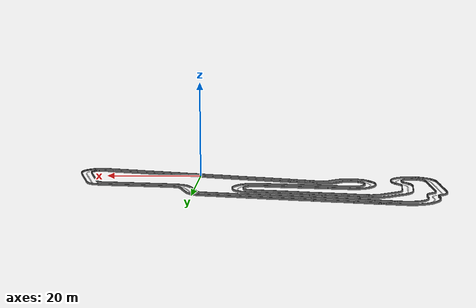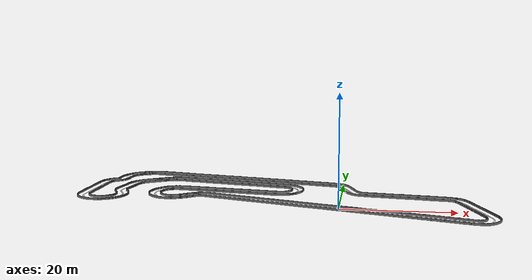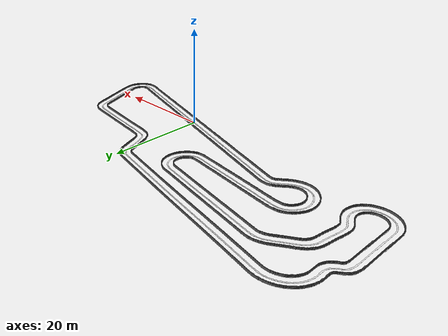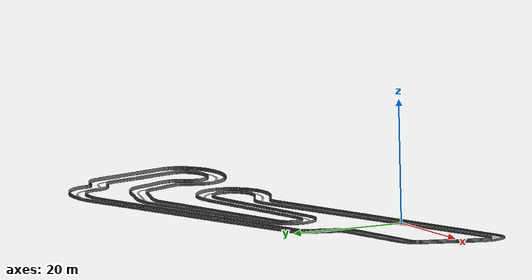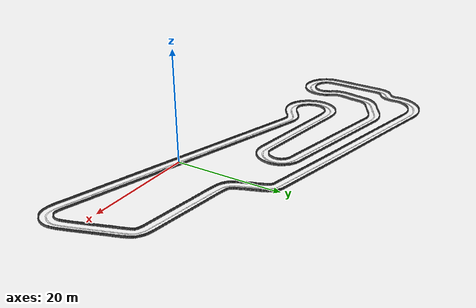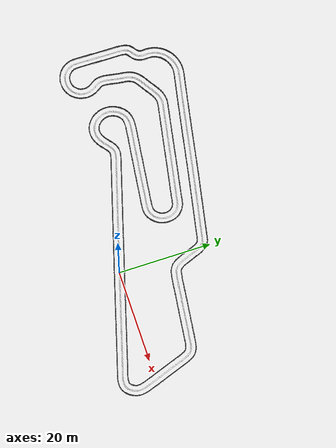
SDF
<?xml version="1.0" ?>
<sdf version="1.10">
    <model name="oschersleben_pro">
        <static>true</static>
        <link name="link">
            <!-- Track Walls visual -->
            <visual name="walls_visual">
                <geometry>
                    <mesh>
                        <uri>model://oschersleben_pro/meshes/track.obj</uri>
                        <scale>1 1 1</scale>
                    </mesh>
                </geometry>
                <material>
                    <ambient>0.2 0.2 0.2 1</ambient>
                    <diffuse>0.3 0.3 0.3 1</diffuse>
                </material>
            </visual>

            <!-- Baked Centerline visual -->
            <visual name="centerline_visual">
                <geometry>
                    <mesh>
                        <uri>model://oschersleben_pro/meshes/centerline.obj</uri>
                        <scale>1 1 1</scale>
                    </mesh>
                </geometry>
                <material>
                    <ambient>1 1 1 1</ambient>
                    <diffuse>1 1 1 1</diffuse>
                    <emissive>1 1 1 1</emissive>
                </material>
            </visual>

            <collision name="ground_collision">
                <pose>0 0 -0.01 0 0 0</pose>
                <geometry>
                    <plane>
                        <normal>0 0 1</normal>
                        <size>400 400</size>
                    </plane>
                </geometry>
                <surface>
                    <friction>
                        <ode>
                            <mu>1.0</mu>
                            <mu2>1.0</mu2>
                        </ode>
                    </friction>
                </surface>
            </collision>
        </link>
    </model>
</sdf>
